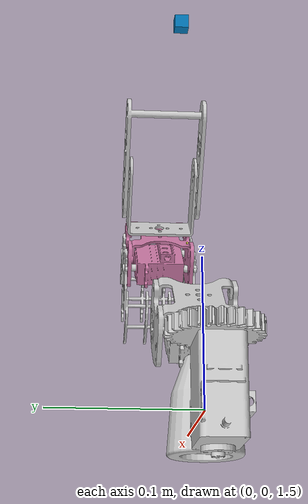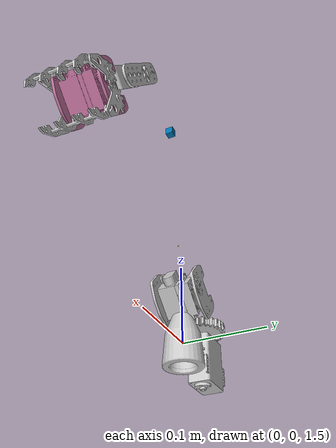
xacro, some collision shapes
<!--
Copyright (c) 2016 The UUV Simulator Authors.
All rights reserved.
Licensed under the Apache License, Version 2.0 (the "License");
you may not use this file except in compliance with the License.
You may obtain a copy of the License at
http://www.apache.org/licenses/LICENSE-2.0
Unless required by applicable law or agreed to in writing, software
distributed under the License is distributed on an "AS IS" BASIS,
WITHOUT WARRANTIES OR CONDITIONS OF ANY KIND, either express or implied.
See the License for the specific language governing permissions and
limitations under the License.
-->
<?xml version="1.0"?>
<robot name="my_manipulator" xmlns:xacro="http://www.ros.org/wiki/xacro">
  <!-- Import serial arm -->
  <xacro:include filename="$(find my_manipulator_description)/robots/my_manipulator_macro.xacro" />

  <link name="world"/>

  <xacro:my_manipulator_loaded namespace="my_manipulator" parent="world">
    <origin xyz="0 0 1.5" rpy="0 0 0"/>
  </xacro:my_manipulator_loaded>
</robot>

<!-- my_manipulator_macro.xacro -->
<robot xmlns:xacro="http://www.ros.org/wiki/xacro">

  <xacro:include filename="$(find my_manipulator_description)/urdf/my_manipulator.xacro"/>
  <xacro:macro name="my_manipulator_loaded" params="namespace parent *origin">

      <xacro:my_manipulator namespace="${namespace}"/>
      <joint name="${namespace}/anchor_link" type="fixed">
        <parent link="${parent}"/>
        <child link="base_link"/>
        <xacro:insert_block name="origin"/>
      </joint>
  </xacro:macro>

</robot>

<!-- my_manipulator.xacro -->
<robot xmlns:xacro="http://www.ros.org/wiki/xacro">

    <xacro:include filename="$(find my_manipulator_description)/urdf/my_manipulator.gazebo.xacro"/>

    <!-- Transmission Macro -->
    <xacro:macro name="simple_transmission" params="joint">
      <transmission name="${joint}_trans">
        <type>transmission_interface/SimpleTransmission</type>
        <joint name="${joint}">
          <hardwareInterface>PositionJointInterface</hardwareInterface>
        </joint>
        <actuator name="${joint}_motor">
          <mechanicalReduction>1</mechanicalReduction>
        </actuator>
      </transmission>
    </xacro:macro>

    <xacro:macro name="my_manipulator" params="namespace">

        <link name="base_link">
            <xacro:link_box_inertial mass="1.0"
                        width="${base_width}"
                        length="${base_length}"
                        height="${base_height}">
            <origin xyz="${base_com}" rpy="0 0 0"/>
            </xacro:link_box_inertial>

            <visual>
                <origin xyz="0 0 0" rpy="0 0 0"/>
                <geometry>
                    <mesh filename="file://$(find my_manipulator_description)/meshes/visual/base_link.dae" scale="1.0 1.0 1.0"/>
                </geometry>
            </visual>

            <collision>
                <origin xyz="0 0 0" rpy="0 0 0"/>
                <geometry>
                    <mesh filename="file://$(find my_manipulator_description)/meshes/collision/base_link.stl" scale="1.0 1.0 1.0"/>
                </geometry>
            </collision>
        </link>

        <link name="shoulder_link">
            <xacro:link_box_inertial mass="1.0"
                        width="${shoulder_width}"
                        length="${shoulder_length}"
                        height="${shoulder_height}">
                <origin xyz="${shoulder_com}" rpy="0 0 0"/>
            </xacro:link_box_inertial>

            <visual>
                <origin xyz="0 0 0" rpy="0 0 0"/>
                <geometry>
                   <mesh filename="file://$(find my_manipulator_description)/meshes/visual/shoulder_link.dae" scale="1.0 1.0 1.0"/>
                </geometry>
            </visual>

            <collision>
                <origin xyz="0 0 0" rpy="0 0 0"/>
                <geometry>
                    <mesh filename="file://$(find my_manipulator_description)/meshes/collision/shoulder_link.stl" scale="1.0 1.0 1.0"/>
                </geometry>
            </collision>
        </link>

        <joint name="shoulder_azimuth" type="revolute">
            <parent link="base_link"/>
            <child link="shoulder_link"/>
            <axis xyz="0 0 1"/>
            <origin xyz="0.010 0.003 0.054" rpy="0.0 0.0 0.0"/>
            <limit lower="${radians(-70)}" upper="${radians(70)}" effort="500.0" velocity="${radians(90)}"/>
        </joint>

        <xacro:simple_transmission joint="shoulder_azimuth" />

        <!-- UPPER ARM -->

        <link name="upper_arm">
            <xacro:link_box_inertial mass="2.0"
                        width="${upper_arm_width}"
                        length="${upper_arm_length}"
                        height="${upper_arm_height}">
                <origin xyz="${upper_arm_com}" rpy="0 0 0"/>
            </xacro:link_box_inertial>

            <visual>
                <origin xyz="0 0 0" rpy="0 0 0"/>
                <geometry>
                    <mesh filename="file://$(find my_manipulator_description)/meshes/visual/upper_arm.dae" scale="1.0 1.0 1.0"/>
                </geometry>
            </visual>

            <collision>
                <origin xyz="0 0 0.05" rpy="0 ${0.5*pi} 0"/>
                <geometry>
                    <box size="0.001 0.001 0.001"/>
                </geometry>
            </collision>
        </link>

        <joint name="shoulder_elevation" type="revolute">
            <parent link="shoulder_link"/>
            <child link="upper_arm"/>
            <axis xyz="0 1 0"/>
            <origin xyz="0.014 0.004 0.013" rpy="0 0 0"/>
            <limit lower="${radians(-70)}" upper="${radians(70)}" effort="500.0" velocity="${radians(90)}"/>
        </joint>

        <xacro:simple_transmission joint="shoulder_elevation" />

        <!-- MIIDLE ARM -->

        <link name="middle_arm">
            <xacro:link_box_inertial mass="1.0"
                        width="${middle_arm_width}"
                        length="${middle_arm_length}"
                        height="${middle_arm_height}">
                <origin xyz="${middle_arm_com}" rpy="0 0 0"/>
            </xacro:link_box_inertial>

            <visual>
                <origin xyz="0 0 0" rpy="0 0 0"/>
                <geometry>
                    <mesh filename="file://$(find my_manipulator_description)/meshes/visual/middle_arm.dae" scale="1.0 1.0 1.0"/>
                </geometry>
            </visual>

            <collision>
                <origin xyz="0 0 0" rpy="0 ${0.5*pi} 0"/>
                <geometry>
                    <box size="0.01 0.01 0.01"/>
                </geometry>
            </collision>
        </link>

        <joint name="first_elbow" type="revolute">
            <parent link="upper_arm"/>
            <child link="middle_arm"/>
            <axis xyz="0.0 1.0 0.0"/>
            <origin xyz="0.019 0.000 0.225" rpy="0 0 0"/>
            <limit lower="${radians(-90)}" upper="${radians(90)}" effort="500.0" velocity="${radians(90)}"/>
        </joint>

        <xacro:simple_transmission joint="first_elbow" />

       <link name="fore_arm">
            <xacro:link_box_inertial mass="1.0"
                        width="${fore_arm_width}"
                        length="${fore_arm_length}"
                        height="${fore_arm_height}">
                <origin xyz="${fore_arm_com}" rpy="0 0 0"/>
            </xacro:link_box_inertial>

            <visual>
                <origin xyz="0 0 0" rpy="0 0 0"/>
                <geometry>
                    <mesh filename="file://$(find my_manipulator_description)/meshes/visual/fore_arm.dae" scale="1.0 1.0 1.0"/>
                </geometry>
            </visual>

            <collision>
                <origin xyz="0 0 0" rpy="0 0 0"/>
                <geometry>
                    <cylinder radius="0.01" length="0.01"/>
                </geometry>
            </collision>
        </link>

        <joint name="second_elbow" type="revolute">
            <parent link="middle_arm"/>
            <child link="fore_arm"/>
            <origin xyz="0.119 0.000 -0.019" rpy="0 0 0"/>
            <axis xyz="0 1 0"/>
            <limit lower="${radians(-90)}" upper="${radians(90)}" effort="500.0" velocity="${radians(90)}"/>
        </joint>

        <xacro:simple_transmission joint="second_elbow" />

        <link name="gripper_link">
            <xacro:link_box_inertial mass="1.0"
                        width="${upper_hand_width}"
                        length="${upper_hand_length}"
                        height="${upper_hand_height}">
                <origin xyz="${upper_hand_com}" rpy="0 0 0"/>
            </xacro:link_box_inertial>

            <visual>
                <origin xyz="0 0 0" rpy="0 0 0"/>
                <geometry>
                    <mesh filename="file://$(find my_manipulator_description)/meshes/visual/gripper_link.dae" scale="1.0 1.0 1.0"/>
                </geometry>
            </visual>

            <collision>
                <origin xyz="0 0 0" rpy="0 0 0"/>
                <geometry>
                    <mesh filename="file://$(find my_manipulator_description)/meshes/collision/gripper_link.stl" scale="1.0 1.0 1.0"/>
                </geometry>
            </collision>
        </link>

        <joint name="wrist" type="fixed">
            <parent link="fore_arm"/>
            <child link="gripper_link"/>
            <origin xyz="0.08 0.0 -0.1" rpy="0.0 0.0 0.0"/>
        </joint>

        <link name="upper_jaws">
            <xacro:link_box_inertial mass="1.0"
                        width="${upper_fingers_width}"
                        length="${upper_fingers_length}"
                        height="${upper_fingers_height}">
                <origin xyz="${upper_fingers_com}" rpy="0 0 0"/>
            </xacro:link_box_inertial>

            <visual>
                <origin xyz="0 0 0" rpy="0 0 0"/>
                <geometry>
                    <mesh filename="file://$(find my_manipulator_description)/meshes/visual/upper_jaws.dae" scale="1.0 1.0 1.0"/>
                </geometry>
            </visual>

            <collision>
                <origin xyz="0 0 0" rpy="0 0 0"/>
                <geometry>
                    <mesh filename="file://$(find my_manipulator_description)/meshes/collision/upper_jaws.dae" scale="1.0 1.0 1.0"/>
                </geometry>
            </collision>
        </link>

        <joint name="upper_jaws_joint" type="revolute">
            <parent link="gripper_link"/>
            <child link="upper_jaws"/>
            <origin xyz="0.01 0.000 0.01" rpy="0 0 0"/>
            <axis xyz="0 1 0"/>
            <limit lower="-0.70" upper="0.27" effort="50" velocity="0.14"/>
        </joint>

        <xacro:simple_transmission joint="upper_jaws_joint" />

        <link name="lower_jaws">
            <xacro:link_box_inertial mass="1.0"
                        width="${lower_hand_width}"
                        length="${lower_hand_length}"
                        height="${lower_hand_height}">
                <origin xyz="${lower_hand_com}" rpy="0 0 0"/>
            </xacro:link_box_inertial>

            <visual>
                <origin xyz="0 0 0" rpy="0 0 0"/>
                <geometry>
                    <mesh filename="file://$(find my_manipulator_description)/meshes/visual/lower_jaws.dae" scale="1.0 1.0 1.0"/>
                </geometry>
            </visual>

            <collision>
                <origin xyz="0 0 0" rpy="0 0 0"/>
                <geometry>
                    <mesh filename="file://$(find my_manipulator_description)/meshes/collision/lower_jaws.dae" scale="1.0 1.0 1.0"/>
                </geometry>
            </collision>
        </link>

        <joint name="lower_jaws_joint" type="revolute">
            <parent link="gripper_link"/>
            <child link="lower_jaws"/>
            <origin xyz="-0.01 0.000 -0.01" rpy="0 0 0"/>
            <axis xyz="0 1 0"/>
            <limit lower="-0.27" upper="0.70" effort="50" velocity="0.14"/>
        </joint>

        <xacro:simple_transmission joint="lower_jaws_joint" />

    </xacro:macro>

</robot>

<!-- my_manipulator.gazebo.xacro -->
<robot xmlns:xacro="http://www.ros.org/wiki/xacro">

  <!-- Include parallel gripper's parameters -->

  <xacro:property name="PI" value="3.1415926535897931"/>
  <xacro:property name="d2r" value="0.017453293" />

  <xacro:macro name="link_box_inertial" params="mass width length height *origin">
      <inertial>
      <xacro:insert_block name="origin"/>
      <mass value="${mass}"/>
      <inertia ixx="${0.083333333 * mass * (width * width + height * height)}" ixy="0.0" ixz="0.0"
               iyy="${0.083333333 * mass * (length * length + height * height)}" iyz="0.0"
               izz="${0.083333333 * mass * (width * width + length * length)}"/>
    </inertial>
  </xacro:macro>

  <xacro:property name="base_width" value="0.04801"/>
  <xacro:property name="base_length" value="0.04801"/>
  <xacro:property name="base_height" value="0.062622"/>
  <xacro:property name="base_volume" value="${base_width * base_length * base_height}" />
  <xacro:property name="base_com" value="0 0 0"/>

  <xacro:property name="shoulder_width" value="0.065307"/>
  <xacro:property name="shoulder_length" value="0.051752"/>
  <xacro:property name="shoulder_height" value="0.042058"/>
  <xacro:property name="shoulder_volume" value="${shoulder_width * shoulder_length * shoulder_height}"/>
  <xacro:property name="shoulder_com" value="0 0 0"/>

  <xacro:property name="upper_arm_width" value="0.035664"/>
  <xacro:property name="upper_arm_length" value="0.063296"/>
  <xacro:property name="upper_arm_height" value="0.19631"/>
  <xacro:property name="upper_arm_volume" value="${upper_arm_width * upper_arm_length * upper_arm_height}" />
  <xacro:property name="upper_arm_com" value="0 0 0.09"/>

  <xacro:property name="middle_arm_width" value="0.084827"/>
  <xacro:property name="middle_arm_length" value="0.0351505"/>
  <xacro:property name="middle_arm_height" value="0.064827"/>
  <xacro:property name="middle_arm_volume" value="${middle_arm_width * middle_arm_length * middle_arm_height}" />
  <xacro:property name="middle_arm_com" value="0.04 0 0"/>

  <xacro:property name="fore_arm_width" value="0.151455"/>
  <xacro:property name="fore_arm_length" value="0.151505"/>
  <xacro:property name="fore_arm_height" value="0.334827"/>
  <xacro:property name="fore_arm_volume" value="${fore_arm_width * fore_arm_length * fore_arm_height}" />
  <xacro:property name="fore_arm_com" value="0 0 ${0.5*0.31595760629823427}"/>

  <xacro:property name="upper_hand_width" value="0.151455"/>
  <xacro:property name="upper_hand_length" value="0.151505"/>
  <xacro:property name="upper_hand_height" value="0.334827"/>
  <xacro:property name="upper_hand_volume" value="${upper_hand_width * upper_hand_length * upper_hand_height}" />
  <xacro:property name="upper_hand_com" value="0 0 ${0.5*0.31595760629823427}"/>

  <xacro:property name="upper_fingers_width" value="0.151455"/>
  <xacro:property name="upper_fingers_length" value="0.151505"/>
  <xacro:property name="upper_fingers_height" value="0.334827"/>
  <xacro:property name="upper_fingers_volume" value="${upper_fingers_width * upper_fingers_length * upper_fingers_height}" />
  <xacro:property name="upper_fingers_com" value="0 0 ${0.5*0.31595760629823427}"/>

  <xacro:property name="lower_hand_width" value="0.151455"/>
  <xacro:property name="lower_hand_length" value="0.151505"/>
  <xacro:property name="lower_hand_height" value="0.334827"/>
  <xacro:property name="lower_hand_volume" value="${lower_hand_width * lower_hand_length * lower_hand_height}" />
  <xacro:property name="lower_hand_com" value="0 0 ${0.5*0.31595760629823427}"/>

  <xacro:property name="lower_fingers_width" value="0.151455"/>
  <xacro:property name="lower_fingers_length" value="0.151505"/>
  <xacro:property name="lower_fingers_height" value="0.334827"/>
  <xacro:property name="lower_fingers_volume" value="${lower_fingers_width * lower_fingers_length * lower_fingers_height}" />
  <xacro:property name="lower_fingers_com" value="0 0 ${0.5*0.31595760629823427}"/>

  <!-- Inertial macros for all serial arm links  -->

  <gazebo reference="gripper_link">
    <maxContacts>1</maxContacts>
  </gazebo>

</robot>
